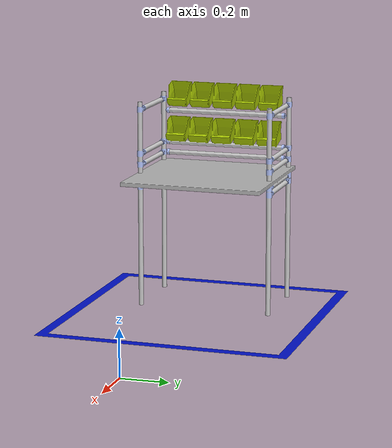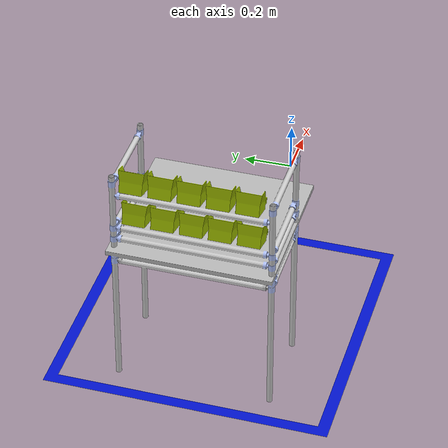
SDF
<?xml version="1.0"?>
<sdf version="1.4">

  <model name="TOFAS Rear Axle Assembly Line (RAAL)">

    <static>true</static>

    <link name="station_structure">

      <pose>-1 0 0 0 0 0</pose>

      <collision name="raal_collision">
        <geometry>
          <mesh>
            <uri>model://assembly_station/meshes/assembly_station.dae</uri>
            <scale>0.55 0.55 0.55</scale>
          </mesh>
        </geometry>
      </collision>

      <visual name="raal_visual">
        <geometry>
          <mesh>
            <uri>model://assembly_station/meshes/assembly_station.dae</uri>
            <scale>0.55 0.55 0.55</scale>
          </mesh>
        </geometry>

      </visual>

    </link>

  </model>
</sdf>
